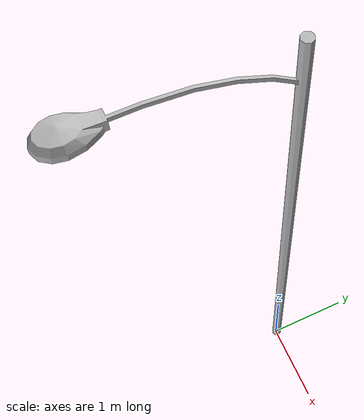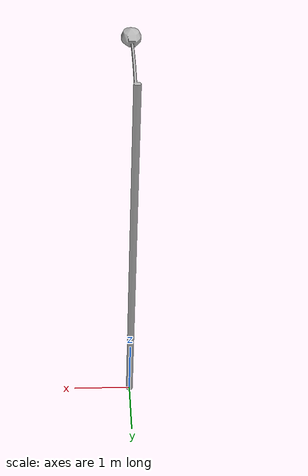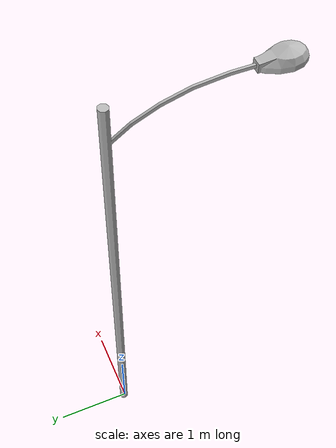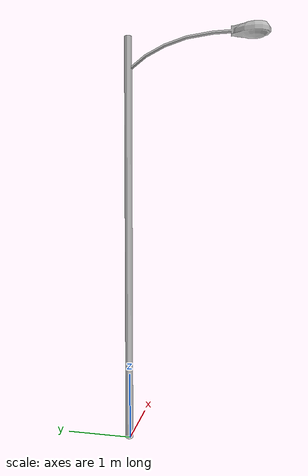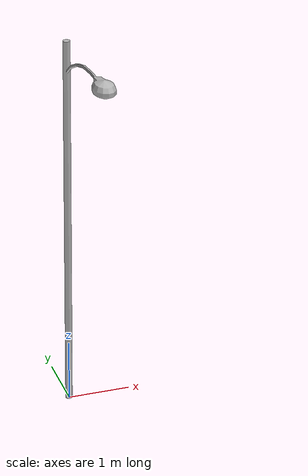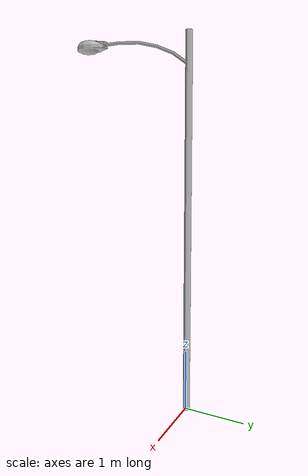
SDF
<?xml version="1.0" ?>
<sdf version="1.5">
  <model name="Lamp Post">
    <static>true</static>
    <link name="link">
      <collision name="collision">
        <pose>0 0 1.5 0 0 0</pose>
        <geometry>
          <box>
            <size>0.2 0.2 3</size>
          </box>
        </geometry>
      </collision>
      <visual name="visual">
        <geometry>
          <mesh>
            <uri>model://lamp_post/meshes/lamp_post.dae</uri>
            <scale>2 2 2</scale>
          </mesh>
        </geometry>
      </visual>
    </link>
  </model>
</sdf>
